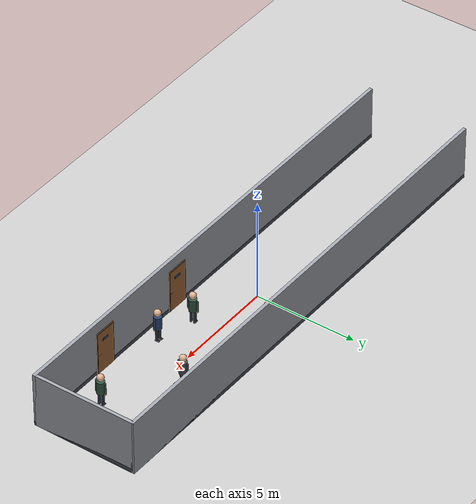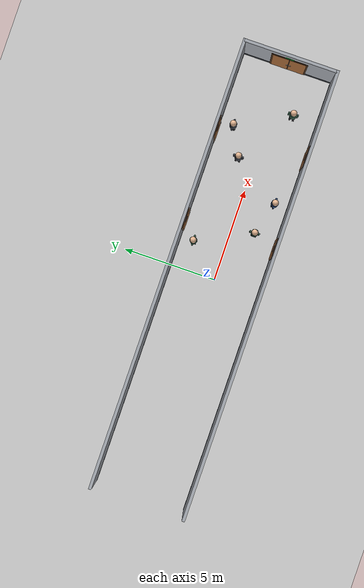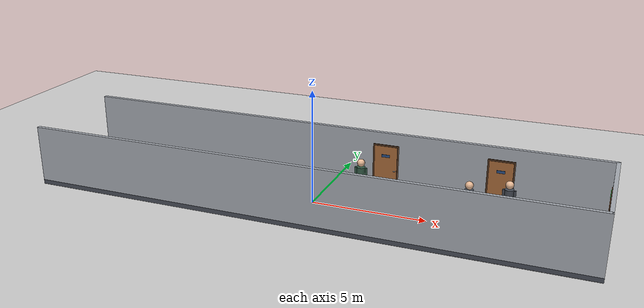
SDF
<sdf version="1.6">
 <world name="default">
  <include><uri>model://ground_plane</uri></include>
  <include><uri>model://sun</uri></include>
  <model name="duvar_kuzey">
   <static>true</static>
   <pose>0 2.5 1.35 0 0 0</pose>
   <link name="link">
    <collision name="col"><geometry><box><size>24.16 0.16 2.7</size></box></geometry></collision>
    <visual name="duvar">
     <geometry><box><size>24.16 0.16 2.7</size></box></geometry>
     <material><ambient>0.54 0.56 0.59 1</ambient><diffuse>0.64 0.66 0.69 1</diffuse></material>
    </visual>
    <visual name="supurgelik">
     <pose>0 -0.005 -1.25 0 0 0</pose>
     <geometry><box><size>24.16 0.17 0.2</size></box></geometry>
     <material><ambient>0.22 0.24 0.27 1</ambient><diffuse>0.28 0.30 0.34 1</diffuse></material>
    </visual>
   </link>
  </model>
  <model name="duvar_guney">
   <static>true</static>
   <pose>0 -2.5 1.35 0 0 0</pose>
   <link name="link">
    <collision name="col"><geometry><box><size>24.16 0.16 2.7</size></box></geometry></collision>
    <visual name="duvar">
     <geometry><box><size>24.16 0.16 2.7</size></box></geometry>
     <material><ambient>0.54 0.56 0.59 1</ambient><diffuse>0.64 0.66 0.69 1</diffuse></material>
    </visual>
    <visual name="supurgelik">
     <pose>0 0.005 -1.25 0 0 0</pose>
     <geometry><box><size>24.16 0.17 0.2</size></box></geometry>
     <material><ambient>0.22 0.24 0.27 1</ambient><diffuse>0.28 0.30 0.34 1</diffuse></material>
    </visual>
   </link>
  </model>
  <model name="duvar_dogu">
   <static>true</static>
   <pose>12.0 0 1.35 0 0 0</pose>
   <link name="link">
    <collision name="col"><geometry><box><size>0.16 5.0 2.7</size></box></geometry></collision>
    <visual name="duvar">
     <geometry><box><size>0.16 5.0 2.7</size></box></geometry>
     <material><ambient>0.54 0.56 0.59 1</ambient><diffuse>0.64 0.66 0.69 1</diffuse></material>
    </visual>
    <visual name="supurgelik">
     <pose>-0.005 0 -1.25 0 0 0</pose>
     <geometry><box><size>0.17 5.0 0.2</size></box></geometry>
     <material><ambient>0.22 0.24 0.27 1</ambient><diffuse>0.28 0.30 0.34 1</diffuse></material>
    </visual>
   </link>
  </model>
  <model name="kapi_kuzey_3">
   <static>true</static>
   <pose>2.5 2.41 0 0 0 0</pose>
   <link name="link">
    <visual name="kasa">
     <pose>0 0 1.08 0 0 0</pose>
     <geometry><box><size>1.16 0.04 2.16</size></box></geometry>
     <material><ambient>0.22 0.14 0.08 1</ambient><diffuse>0.30 0.19 0.11 1</diffuse></material>
    </visual>
    <visual name="kanat">
     <pose>0 -0.008 1.05 0 0 0</pose>
     <geometry><box><size>1.02 0.045 2.08</size></box></geometry>
     <material><ambient>0.52 0.32 0.16 1</ambient><diffuse>0.65 0.41 0.22 1</diffuse></material>
    </visual>
    <visual name="kol">
     <pose>0.40 -0.04 0.98 0 0 0</pose>
     <geometry><box><size>0.12 0.03 0.03</size></box></geometry>
     <material><ambient>0.75 0.75 0.78 1</ambient><diffuse>0.88 0.88 0.90 1</diffuse></material>
    </visual>
    <visual name="tabela">
     <pose>0 -0.035 1.65 0 0 0</pose>
     <geometry><box><size>0.36 0.015 0.12</size></box></geometry>
     <material><ambient>0.12 0.22 0.38 1</ambient><diffuse>0.16 0.30 0.50 1</diffuse></material>
    </visual>
   </link>
  </model>
  <model name="kapi_kuzey_4">
   <static>true</static>
   <pose>7.5 2.41 0 0 0 0</pose>
   <link name="link">
    <visual name="kasa">
     <pose>0 0 1.08 0 0 0</pose>
     <geometry><box><size>1.16 0.04 2.16</size></box></geometry>
     <material><ambient>0.22 0.14 0.08 1</ambient><diffuse>0.30 0.19 0.11 1</diffuse></material>
    </visual>
    <visual name="kanat">
     <pose>0 -0.008 1.05 0 0 0</pose>
     <geometry><box><size>1.02 0.045 2.08</size></box></geometry>
     <material><ambient>0.52 0.32 0.16 1</ambient><diffuse>0.65 0.41 0.22 1</diffuse></material>
    </visual>
    <visual name="kol">
     <pose>0.40 -0.04 0.98 0 0 0</pose>
     <geometry><box><size>0.12 0.03 0.03</size></box></geometry>
     <material><ambient>0.75 0.75 0.78 1</ambient><diffuse>0.88 0.88 0.90 1</diffuse></material>
    </visual>
    <visual name="tabela">
     <pose>0 -0.035 1.65 0 0 0</pose>
     <geometry><box><size>0.36 0.015 0.12</size></box></geometry>
     <material><ambient>0.12 0.22 0.38 1</ambient><diffuse>0.16 0.30 0.50 1</diffuse></material>
    </visual>
   </link>
  </model>
  <model name="kapi_guney_3">
   <static>true</static>
   <pose>2.5 -2.41 0 0 0 0</pose>
   <link name="link">
    <visual name="kasa">
     <pose>0 0 1.08 0 0 0</pose>
     <geometry><box><size>1.16 0.04 2.16</size></box></geometry>
     <material><ambient>0.22 0.14 0.08 1</ambient><diffuse>0.30 0.19 0.11 1</diffuse></material>
    </visual>
    <visual name="kanat">
     <pose>0 0.008 1.05 0 0 0</pose>
     <geometry><box><size>1.02 0.045 2.08</size></box></geometry>
     <material><ambient>0.52 0.32 0.16 1</ambient><diffuse>0.65 0.41 0.22 1</diffuse></material>
    </visual>
    <visual name="kol">
     <pose>0.40 0.04 0.98 0 0 0</pose>
     <geometry><box><size>0.12 0.03 0.03</size></box></geometry>
     <material><ambient>0.75 0.75 0.78 1</ambient><diffuse>0.88 0.88 0.90 1</diffuse></material>
    </visual>
    <visual name="tabela">
     <pose>0 0.035 1.65 0 0 0</pose>
     <geometry><box><size>0.36 0.015 0.12</size></box></geometry>
     <material><ambient>0.12 0.22 0.38 1</ambient><diffuse>0.16 0.30 0.50 1</diffuse></material>
    </visual>
   </link>
  </model>
  <model name="kapi_guney_4">
   <static>true</static>
   <pose>7.5 -2.41 0 0 0 0</pose>
   <link name="link">
    <visual name="kasa">
     <pose>0 0 1.08 0 0 0</pose>
     <geometry><box><size>1.16 0.04 2.16</size></box></geometry>
     <material><ambient>0.22 0.14 0.08 1</ambient><diffuse>0.30 0.19 0.11 1</diffuse></material>
    </visual>
    <visual name="kanat">
     <pose>0 0.008 1.05 0 0 0</pose>
     <geometry><box><size>1.02 0.045 2.08</size></box></geometry>
     <material><ambient>0.52 0.32 0.16 1</ambient><diffuse>0.65 0.41 0.22 1</diffuse></material>
    </visual>
    <visual name="kol">
     <pose>0.40 0.04 0.98 0 0 0</pose>
     <geometry><box><size>0.12 0.03 0.03</size></box></geometry>
     <material><ambient>0.75 0.75 0.78 1</ambient><diffuse>0.88 0.88 0.90 1</diffuse></material>
    </visual>
    <visual name="tabela">
     <pose>0 0.035 1.65 0 0 0</pose>
     <geometry><box><size>0.36 0.015 0.12</size></box></geometry>
     <material><ambient>0.12 0.22 0.38 1</ambient><diffuse>0.16 0.30 0.50 1</diffuse></material>
    </visual>
   </link>
  </model>
  <model name="kapi_dogu_cikis">
   <static>true</static>
   <pose>11.91 0 0 0 0 0</pose>
   <link name="link">
    <visual name="kasa">
     <pose>0 0 1.12 0 0 0</pose>
     <geometry><box><size>0.04 1.96 2.24</size></box></geometry>
     <material><ambient>0.22 0.14 0.08 1</ambient><diffuse>0.30 0.19 0.11 1</diffuse></material>
    </visual>
    <visual name="kanat_sol">
     <pose>-0.008 0.46 1.09 0 0 0</pose>
     <geometry><box><size>0.045 0.88 2.16</size></box></geometry>
     <material><ambient>0.52 0.32 0.16 1</ambient><diffuse>0.65 0.41 0.22 1</diffuse></material>
    </visual>
    <visual name="kanat_sag">
     <pose>-0.008 -0.46 1.09 0 0 0</pose>
     <geometry><box><size>0.045 0.88 2.16</size></box></geometry>
     <material><ambient>0.52 0.32 0.16 1</ambient><diffuse>0.65 0.41 0.22 1</diffuse></material>
    </visual>
    <visual name="kol_sol">
     <pose>-0.04 0.08 0.98 0 0 0</pose>
     <geometry><box><size>0.03 0.12 0.03</size></box></geometry>
     <material><ambient>0.75 0.75 0.78 1</ambient><diffuse>0.88 0.88 0.90 1</diffuse></material>
    </visual>
    <visual name="kol_sag">
     <pose>-0.04 -0.08 0.98 0 0 0</pose>
     <geometry><box><size>0.03 0.12 0.03</size></box></geometry>
     <material><ambient>0.75 0.75 0.78 1</ambient><diffuse>0.88 0.88 0.90 1</diffuse></material>
    </visual>
    <visual name="exit_tabela">
     <pose>-0.03 0 2.36 0 0 0</pose>
     <geometry><box><size>0.02 0.48 0.16</size></box></geometry>
     <material><ambient>0.10 0.55 0.20 1</ambient><diffuse>0.15 0.75 0.28 1</diffuse></material>
    </visual>
   </link>
  </model>
  <model name="insan_4">
   <static>false</static>
   <pose>1.6 1.7 0 0 0 -1.57</pose>
   <link name="base_link">
    <inertial>
     <pose>0 0 0.80 0 0 0</pose>
     <mass>50.0</mass>
     <inertia><ixx>100.0</ixx><ixy>0</ixy><ixz>0</ixz><iyy>100.0</iyy><iyz>0</iyz><izz>10.0</izz></inertia>
    </inertial>
    <collision name="tek_collision">
     <pose>0 0 0.8222 0 0 0</pose>
     <geometry><cylinder><radius>0.23</radius><length>1.5944</length></cylinder></geometry>
     <surface><friction><ode><mu>0.0</mu><mu2>0.0</mu2></ode></friction></surface>
    </collision>
    <visual name="govde_vis">
     <pose>0 0 0.9570 0 0 0</pose>
     <geometry><cylinder><radius>0.19</radius><length>0.6048</length></cylinder></geometry>
     <material><ambient>0.16 0.28 0.22 1</ambient><diffuse>0.21 0.36 0.28 1</diffuse></material>
    </visual>
    <visual name="kafa_vis">
     <pose>0 0 1.4494 0 0 0</pose>
     <geometry><sphere><radius>0.17</radius></sphere></geometry>
     <material><ambient>0.85 0.68 0.55 1</ambient><diffuse>0.90 0.72 0.58 1</diffuse></material>
    </visual>
    <visual name="bacak_sol_vis">
     <pose>0 0.095 0.3648 0 0 0</pose>
     <geometry><cylinder><radius>0.068</radius><length>0.5796</length></cylinder></geometry>
     <material><ambient>0.14 0.16 0.20 1</ambient><diffuse>0.18 0.20 0.25 1</diffuse></material>
    </visual>
    <visual name="bacak_sag_vis">
     <pose>0 -0.095 0.3648 0 0 0</pose>
     <geometry><cylinder><radius>0.068</radius><length>0.5796</length></cylinder></geometry>
     <material><ambient>0.14 0.16 0.20 1</ambient><diffuse>0.18 0.20 0.25 1</diffuse></material>
    </visual>
    <visual name="ayak_sol_vis">
     <pose>0.04 0.095 0.0500 0 0 0</pose>
     <geometry><box><size>0.21 0.095 0.05</size></box></geometry>
     <material><ambient>0.10 0.10 0.11 1</ambient><diffuse>0.15 0.15 0.17 1</diffuse></material>
    </visual>
    <visual name="ayak_sag_vis">
     <pose>0.04 -0.095 0.0500 0 0 0</pose>
     <geometry><box><size>0.21 0.095 0.05</size></box></geometry>
     <material><ambient>0.10 0.10 0.11 1</ambient><diffuse>0.15 0.15 0.17 1</diffuse></material>
    </visual>
    <visual name="kol_sol_vis">
     <pose>0 0.235 0.9724 0 0 0</pose>
     <geometry><cylinder><radius>0.048</radius><length>0.5141</length></cylinder></geometry>
     <material><ambient>0.16 0.28 0.22 1</ambient><diffuse>0.21 0.36 0.28 1</diffuse></material>
    </visual>
    <visual name="kol_sag_vis">
     <pose>0 -0.235 0.9724 0 0 0</pose>
     <geometry><cylinder><radius>0.048</radius><length>0.5141</length></cylinder></geometry>
     <material><ambient>0.16 0.28 0.22 1</ambient><diffuse>0.21 0.36 0.28 1</diffuse></material>
    </visual>
    <visual name="el_sol_vis">
     <pose>0 0.235 0.6753 0 0 0</pose>
     <geometry><sphere><radius>0.048</radius></sphere></geometry>
     <material><ambient>0.85 0.68 0.55 1</ambient><diffuse>0.90 0.72 0.58 1</diffuse></material>
    </visual>
    <visual name="el_sag_vis">
     <pose>0 -0.235 0.6753 0 0 0</pose>
     <geometry><sphere><radius>0.048</radius></sphere></geometry>
     <material><ambient>0.85 0.68 0.55 1</ambient><diffuse>0.90 0.72 0.58 1</diffuse></material>
    </visual>
   </link>
   <plugin name="insan_4_planar_move" filename="libgazebo_ros_planar_move.so">
    <ros>
     <namespace>/insan_4</namespace>
     <remapping>cmd_vel:=cmd_vel</remapping>
     <remapping>odom:=odom</remapping>
    </ros>
    <update_rate>30</update_rate>
    <publish_rate>10</publish_rate>
    <publish_odom>false</publish_odom>
    <publish_odom_tf>false</publish_odom_tf>
    <odometry_frame>insan_4_odom</odometry_frame>
    <robot_base_frame>base_link</robot_base_frame>
   </plugin>
  </model>
  <model name="insan_5">
   <static>false</static>
   <pose>4.8 -1.7 0 0 0 1.57</pose>
   <link name="base_link">
    <inertial>
     <pose>0 0 0.80 0 0 0</pose>
     <mass>50.0</mass>
     <inertia><ixx>100.0</ixx><ixy>0</ixy><ixz>0</ixz><iyy>100.0</iyy><iyz>0</iyz><izz>10.0</izz></inertia>
    </inertial>
    <collision name="tek_collision">
     <pose>0 0 0.8410 0 0 0</pose>
     <geometry><cylinder><radius>0.23</radius><length>1.6320</length></cylinder></geometry>
     <surface><friction><ode><mu>0.0</mu><mu2>0.0</mu2></ode></friction></surface>
    </collision>
    <visual name="govde_vis">
     <pose>0 0 0.9850 0 0 0</pose>
     <geometry><cylinder><radius>0.19</radius><length>0.6240</length></cylinder></geometry>
     <material><ambient>0.14 0.22 0.36 1</ambient><diffuse>0.18 0.28 0.46 1</diffuse></material>
    </visual>
    <visual name="kafa_vis">
     <pose>0 0 1.4870 0 0 0</pose>
     <geometry><sphere><radius>0.17</radius></sphere></geometry>
     <material><ambient>0.85 0.68 0.55 1</ambient><diffuse>0.90 0.72 0.58 1</diffuse></material>
    </visual>
    <visual name="bacak_sol_vis">
     <pose>0 0.095 0.3740 0 0 0</pose>
     <geometry><cylinder><radius>0.068</radius><length>0.5980</length></cylinder></geometry>
     <material><ambient>0.14 0.16 0.20 1</ambient><diffuse>0.18 0.20 0.25 1</diffuse></material>
    </visual>
    <visual name="bacak_sag_vis">
     <pose>0 -0.095 0.3740 0 0 0</pose>
     <geometry><cylinder><radius>0.068</radius><length>0.5980</length></cylinder></geometry>
     <material><ambient>0.14 0.16 0.20 1</ambient><diffuse>0.18 0.20 0.25 1</diffuse></material>
    </visual>
    <visual name="ayak_sol_vis">
     <pose>0.04 0.095 0.0500 0 0 0</pose>
     <geometry><box><size>0.21 0.095 0.05</size></box></geometry>
     <material><ambient>0.10 0.10 0.11 1</ambient><diffuse>0.15 0.15 0.17 1</diffuse></material>
    </visual>
    <visual name="ayak_sag_vis">
     <pose>0.04 -0.095 0.0500 0 0 0</pose>
     <geometry><box><size>0.21 0.095 0.05</size></box></geometry>
     <material><ambient>0.10 0.10 0.11 1</ambient><diffuse>0.15 0.15 0.17 1</diffuse></material>
    </visual>
    <visual name="kol_sol_vis">
     <pose>0 0.235 1.0018 0 0 0</pose>
     <geometry><cylinder><radius>0.048</radius><length>0.5304</length></cylinder></geometry>
     <material><ambient>0.14 0.22 0.36 1</ambient><diffuse>0.18 0.28 0.46 1</diffuse></material>
    </visual>
    <visual name="kol_sag_vis">
     <pose>0 -0.235 1.0018 0 0 0</pose>
     <geometry><cylinder><radius>0.048</radius><length>0.5304</length></cylinder></geometry>
     <material><ambient>0.14 0.22 0.36 1</ambient><diffuse>0.18 0.28 0.46 1</diffuse></material>
    </visual>
    <visual name="el_sol_vis">
     <pose>0 0.235 0.6966 0 0 0</pose>
     <geometry><sphere><radius>0.048</radius></sphere></geometry>
     <material><ambient>0.85 0.68 0.55 1</ambient><diffuse>0.90 0.72 0.58 1</diffuse></material>
    </visual>
    <visual name="el_sag_vis">
     <pose>0 -0.235 0.6966 0 0 0</pose>
     <geometry><sphere><radius>0.048</radius></sphere></geometry>
     <material><ambient>0.85 0.68 0.55 1</ambient><diffuse>0.90 0.72 0.58 1</diffuse></material>
    </visual>
   </link>
   <plugin name="insan_5_planar_move" filename="libgazebo_ros_planar_move.so">
    <ros>
     <namespace>/insan_5</namespace>
     <remapping>cmd_vel:=cmd_vel</remapping>
     <remapping>odom:=odom</remapping>
    </ros>
    <update_rate>30</update_rate>
    <publish_rate>10</publish_rate>
    <publish_odom>false</publish_odom>
    <publish_odom_tf>false</publish_odom_tf>
    <odometry_frame>insan_5_odom</odometry_frame>
    <robot_base_frame>base_link</robot_base_frame>
   </plugin>
  </model>
  <model name="insan_6">
   <static>false</static>
   <pose>8.0 1.7 0 0 0 -1.57</pose>
   <link name="base_link">
    <inertial>
     <pose>0 0 0.80 0 0 0</pose>
     <mass>50.0</mass>
     <inertia><ixx>100.0</ixx><ixy>0</ixy><ixz>0</ixz><iyy>100.0</iyy><iyz>0</iyz><izz>10.0</izz></inertia>
    </inertial>
    <collision name="tek_collision">
     <pose>0 0 0.8034 0 0 0</pose>
     <geometry><cylinder><radius>0.23</radius><length>1.5568</length></cylinder></geometry>
     <surface><friction><ode><mu>0.0</mu><mu2>0.0</mu2></ode></friction></surface>
    </collision>
    <visual name="govde_vis">
     <pose>0 0 0.9290 0 0 0</pose>
     <geometry><cylinder><radius>0.19</radius><length>0.5856</length></cylinder></geometry>
     <material><ambient>0.22 0.24 0.27 1</ambient><diffuse>0.28 0.30 0.34 1</diffuse></material>
    </visual>
    <visual name="kafa_vis">
     <pose>0 0 1.4118 0 0 0</pose>
     <geometry><sphere><radius>0.17</radius></sphere></geometry>
     <material><ambient>0.85 0.68 0.55 1</ambient><diffuse>0.90 0.72 0.58 1</diffuse></material>
    </visual>
    <visual name="bacak_sol_vis">
     <pose>0 0.095 0.3556 0 0 0</pose>
     <geometry><cylinder><radius>0.068</radius><length>0.5612</length></cylinder></geometry>
     <material><ambient>0.14 0.16 0.20 1</ambient><diffuse>0.18 0.20 0.25 1</diffuse></material>
    </visual>
    <visual name="bacak_sag_vis">
     <pose>0 -0.095 0.3556 0 0 0</pose>
     <geometry><cylinder><radius>0.068</radius><length>0.5612</length></cylinder></geometry>
     <material><ambient>0.14 0.16 0.20 1</ambient><diffuse>0.18 0.20 0.25 1</diffuse></material>
    </visual>
    <visual name="ayak_sol_vis">
     <pose>0.04 0.095 0.0500 0 0 0</pose>
     <geometry><box><size>0.21 0.095 0.05</size></box></geometry>
     <material><ambient>0.10 0.10 0.11 1</ambient><diffuse>0.15 0.15 0.17 1</diffuse></material>
    </visual>
    <visual name="ayak_sag_vis">
     <pose>0.04 -0.095 0.0500 0 0 0</pose>
     <geometry><box><size>0.21 0.095 0.05</size></box></geometry>
     <material><ambient>0.10 0.10 0.11 1</ambient><diffuse>0.15 0.15 0.17 1</diffuse></material>
    </visual>
    <visual name="kol_sol_vis">
     <pose>0 0.235 0.9429 0 0 0</pose>
     <geometry><cylinder><radius>0.048</radius><length>0.4978</length></cylinder></geometry>
     <material><ambient>0.22 0.24 0.27 1</ambient><diffuse>0.28 0.30 0.34 1</diffuse></material>
    </visual>
    <visual name="kol_sag_vis">
     <pose>0 -0.235 0.9429 0 0 0</pose>
     <geometry><cylinder><radius>0.048</radius><length>0.4978</length></cylinder></geometry>
     <material><ambient>0.22 0.24 0.27 1</ambient><diffuse>0.28 0.30 0.34 1</diffuse></material>
    </visual>
    <visual name="el_sol_vis">
     <pose>0 0.235 0.6540 0 0 0</pose>
     <geometry><sphere><radius>0.048</radius></sphere></geometry>
     <material><ambient>0.85 0.68 0.55 1</ambient><diffuse>0.90 0.72 0.58 1</diffuse></material>
    </visual>
    <visual name="el_sag_vis">
     <pose>0 -0.235 0.6540 0 0 0</pose>
     <geometry><sphere><radius>0.048</radius></sphere></geometry>
     <material><ambient>0.85 0.68 0.55 1</ambient><diffuse>0.90 0.72 0.58 1</diffuse></material>
    </visual>
   </link>
   <plugin name="insan_6_planar_move" filename="libgazebo_ros_planar_move.so">
    <ros>
     <namespace>/insan_6</namespace>
     <remapping>cmd_vel:=cmd_vel</remapping>
     <remapping>odom:=odom</remapping>
    </ros>
    <update_rate>30</update_rate>
    <publish_rate>10</publish_rate>
    <publish_odom>false</publish_odom>
    <publish_odom_tf>false</publish_odom_tf>
    <odometry_frame>insan_6_odom</odometry_frame>
    <robot_base_frame>base_link</robot_base_frame>
   </plugin>
  </model>
  <model name="insan_8">
   <static>false</static>
   <pose>9.5 -1.1 0 0 0 3.14</pose>
   <link name="base_link">
    <inertial>
     <pose>0 0 0.80 0 0 0</pose>
     <mass>50.0</mass>
     <inertia><ixx>100.0</ixx><ixy>0</ixy><ixz>0</ixz><iyy>100.0</iyy><iyz>0</iyz><izz>10.0</izz></inertia>
    </inertial>
    <collision name="tek_collision">
     <pose>0 0 0.8457 0 0 0</pose>
     <geometry><cylinder><radius>0.23</radius><length>1.6414</length></cylinder></geometry>
     <surface><friction><ode><mu>0.0</mu><mu2>0.0</mu2></ode></friction></surface>
    </collision>
    <visual name="govde_vis">
     <pose>0 0 0.9920 0 0 0</pose>
     <geometry><cylinder><radius>0.19</radius><length>0.6288</length></cylinder></geometry>
     <material><ambient>0.16 0.28 0.22 1</ambient><diffuse>0.21 0.36 0.28 1</diffuse></material>
    </visual>
    <visual name="kafa_vis">
     <pose>0 0 1.4964 0 0 0</pose>
     <geometry><sphere><radius>0.17</radius></sphere></geometry>
     <material><ambient>0.85 0.68 0.55 1</ambient><diffuse>0.90 0.72 0.58 1</diffuse></material>
    </visual>
    <visual name="bacak_sol_vis">
     <pose>0 0.095 0.3763 0 0 0</pose>
     <geometry><cylinder><radius>0.068</radius><length>0.6026</length></cylinder></geometry>
     <material><ambient>0.14 0.16 0.20 1</ambient><diffuse>0.18 0.20 0.25 1</diffuse></material>
    </visual>
    <visual name="bacak_sag_vis">
     <pose>0 -0.095 0.3763 0 0 0</pose>
     <geometry><cylinder><radius>0.068</radius><length>0.6026</length></cylinder></geometry>
     <material><ambient>0.14 0.16 0.20 1</ambient><diffuse>0.18 0.20 0.25 1</diffuse></material>
    </visual>
    <visual name="ayak_sol_vis">
     <pose>0.04 0.095 0.0500 0 0 0</pose>
     <geometry><box><size>0.21 0.095 0.05</size></box></geometry>
     <material><ambient>0.10 0.10 0.11 1</ambient><diffuse>0.15 0.15 0.17 1</diffuse></material>
    </visual>
    <visual name="ayak_sag_vis">
     <pose>0.04 -0.095 0.0500 0 0 0</pose>
     <geometry><box><size>0.21 0.095 0.05</size></box></geometry>
     <material><ambient>0.10 0.10 0.11 1</ambient><diffuse>0.15 0.15 0.17 1</diffuse></material>
    </visual>
    <visual name="kol_sol_vis">
     <pose>0 0.235 1.0092 0 0 0</pose>
     <geometry><cylinder><radius>0.048</radius><length>0.5345</length></cylinder></geometry>
     <material><ambient>0.16 0.28 0.22 1</ambient><diffuse>0.21 0.36 0.28 1</diffuse></material>
    </visual>
    <visual name="kol_sag_vis">
     <pose>0 -0.235 1.0092 0 0 0</pose>
     <geometry><cylinder><radius>0.048</radius><length>0.5345</length></cylinder></geometry>
     <material><ambient>0.16 0.28 0.22 1</ambient><diffuse>0.21 0.36 0.28 1</diffuse></material>
    </visual>
    <visual name="el_sol_vis">
     <pose>0 0.235 0.7019 0 0 0</pose>
     <geometry><sphere><radius>0.048</radius></sphere></geometry>
     <material><ambient>0.85 0.68 0.55 1</ambient><diffuse>0.90 0.72 0.58 1</diffuse></material>
    </visual>
    <visual name="el_sag_vis">
     <pose>0 -0.235 0.7019 0 0 0</pose>
     <geometry><sphere><radius>0.048</radius></sphere></geometry>
     <material><ambient>0.85 0.68 0.55 1</ambient><diffuse>0.90 0.72 0.58 1</diffuse></material>
    </visual>
   </link>
   <plugin name="insan_8_planar_move" filename="libgazebo_ros_planar_move.so">
    <ros>
     <namespace>/insan_8</namespace>
     <remapping>cmd_vel:=cmd_vel</remapping>
     <remapping>odom:=odom</remapping>
    </ros>
    <update_rate>30</update_rate>
    <publish_rate>10</publish_rate>
    <publish_odom>false</publish_odom>
    <publish_odom_tf>false</publish_odom_tf>
    <odometry_frame>insan_8_odom</odometry_frame>
    <robot_base_frame>base_link</robot_base_frame>
   </plugin>
  </model>
  <model name="insan_10">
   <static>false</static>
   <pose>6.5 0.9 0 0 0 3.14</pose>
   <link name="base_link">
    <inertial>
     <pose>0 0 0.80 0 0 0</pose>
     <mass>50.0</mass>
     <inertia><ixx>100.0</ixx><ixy>0</ixy><ixz>0</ixz><iyy>100.0</iyy><iyz>0</iyz><izz>10.0</izz></inertia>
    </inertial>
    <collision name="tek_collision">
     <pose>0 0 0.8363 0 0 0</pose>
     <geometry><cylinder><radius>0.23</radius><length>1.6226</length></cylinder></geometry>
     <surface><friction><ode><mu>0.0</mu><mu2>0.0</mu2></ode></friction></surface>
    </collision>
    <visual name="govde_vis">
     <pose>0 0 0.9780 0 0 0</pose>
     <geometry><cylinder><radius>0.19</radius><length>0.6192</length></cylinder></geometry>
     <material><ambient>0.22 0.24 0.27 1</ambient><diffuse>0.28 0.30 0.34 1</diffuse></material>
    </visual>
    <visual name="kafa_vis">
     <pose>0 0 1.4776 0 0 0</pose>
     <geometry><sphere><radius>0.17</radius></sphere></geometry>
     <material><ambient>0.85 0.68 0.55 1</ambient><diffuse>0.90 0.72 0.58 1</diffuse></material>
    </visual>
    <visual name="bacak_sol_vis">
     <pose>0 0.095 0.3717 0 0 0</pose>
     <geometry><cylinder><radius>0.068</radius><length>0.5934</length></cylinder></geometry>
     <material><ambient>0.14 0.16 0.20 1</ambient><diffuse>0.18 0.20 0.25 1</diffuse></material>
    </visual>
    <visual name="bacak_sag_vis">
     <pose>0 -0.095 0.3717 0 0 0</pose>
     <geometry><cylinder><radius>0.068</radius><length>0.5934</length></cylinder></geometry>
     <material><ambient>0.14 0.16 0.20 1</ambient><diffuse>0.18 0.20 0.25 1</diffuse></material>
    </visual>
    <visual name="ayak_sol_vis">
     <pose>0.04 0.095 0.0500 0 0 0</pose>
     <geometry><box><size>0.21 0.095 0.05</size></box></geometry>
     <material><ambient>0.10 0.10 0.11 1</ambient><diffuse>0.15 0.15 0.17 1</diffuse></material>
    </visual>
    <visual name="ayak_sag_vis">
     <pose>0.04 -0.095 0.0500 0 0 0</pose>
     <geometry><box><size>0.21 0.095 0.05</size></box></geometry>
     <material><ambient>0.10 0.10 0.11 1</ambient><diffuse>0.15 0.15 0.17 1</diffuse></material>
    </visual>
    <visual name="kol_sol_vis">
     <pose>0 0.235 0.9944 0 0 0</pose>
     <geometry><cylinder><radius>0.048</radius><length>0.5263</length></cylinder></geometry>
     <material><ambient>0.22 0.24 0.27 1</ambient><diffuse>0.28 0.30 0.34 1</diffuse></material>
    </visual>
    <visual name="kol_sag_vis">
     <pose>0 -0.235 0.9944 0 0 0</pose>
     <geometry><cylinder><radius>0.048</radius><length>0.5263</length></cylinder></geometry>
     <material><ambient>0.22 0.24 0.27 1</ambient><diffuse>0.28 0.30 0.34 1</diffuse></material>
    </visual>
    <visual name="el_sol_vis">
     <pose>0 0.235 0.6913 0 0 0</pose>
     <geometry><sphere><radius>0.048</radius></sphere></geometry>
     <material><ambient>0.85 0.68 0.55 1</ambient><diffuse>0.90 0.72 0.58 1</diffuse></material>
    </visual>
    <visual name="el_sag_vis">
     <pose>0 -0.235 0.6913 0 0 0</pose>
     <geometry><sphere><radius>0.048</radius></sphere></geometry>
     <material><ambient>0.85 0.68 0.55 1</ambient><diffuse>0.90 0.72 0.58 1</diffuse></material>
    </visual>
   </link>
   <plugin name="insan_10_planar_move" filename="libgazebo_ros_planar_move.so">
    <ros>
     <namespace>/insan_10</namespace>
     <remapping>cmd_vel:=cmd_vel</remapping>
     <remapping>odom:=odom</remapping>
    </ros>
    <update_rate>30</update_rate>
    <publish_rate>10</publish_rate>
    <publish_odom>false</publish_odom>
    <publish_odom_tf>false</publish_odom_tf>
    <odometry_frame>insan_10_odom</odometry_frame>
    <robot_base_frame>base_link</robot_base_frame>
   </plugin>
  </model>
  <model name="insan_12">
   <static>false</static>
   <pose>3.0 -1.2 0 0 0 3.14</pose>
   <link name="base_link">
    <inertial>
     <pose>0 0 0.80 0 0 0</pose>
     <mass>50.0</mass>
     <inertia><ixx>100.0</ixx><ixy>0</ixy><ixz>0</ixz><iyy>100.0</iyy><iyz>0</iyz><izz>10.0</izz></inertia>
    </inertial>
    <collision name="tek_collision">
     <pose>0 0 0.8316 0 0 0</pose>
     <geometry><cylinder><radius>0.23</radius><length>1.6132</length></cylinder></geometry>
     <surface><friction><ode><mu>0.0</mu><mu2>0.0</mu2></ode></friction></surface>
    </collision>
    <visual name="govde_vis">
     <pose>0 0 0.9710 0 0 0</pose>
     <geometry><cylinder><radius>0.19</radius><length>0.6144</length></cylinder></geometry>
     <material><ambient>0.16 0.28 0.22 1</ambient><diffuse>0.21 0.36 0.28 1</diffuse></material>
    </visual>
    <visual name="kafa_vis">
     <pose>0 0 1.4682 0 0 0</pose>
     <geometry><sphere><radius>0.17</radius></sphere></geometry>
     <material><ambient>0.85 0.68 0.55 1</ambient><diffuse>0.90 0.72 0.58 1</diffuse></material>
    </visual>
    <visual name="bacak_sol_vis">
     <pose>0 0.095 0.3694 0 0 0</pose>
     <geometry><cylinder><radius>0.068</radius><length>0.5888</length></cylinder></geometry>
     <material><ambient>0.14 0.16 0.20 1</ambient><diffuse>0.18 0.20 0.25 1</diffuse></material>
    </visual>
    <visual name="bacak_sag_vis">
     <pose>0 -0.095 0.3694 0 0 0</pose>
     <geometry><cylinder><radius>0.068</radius><length>0.5888</length></cylinder></geometry>
     <material><ambient>0.14 0.16 0.20 1</ambient><diffuse>0.18 0.20 0.25 1</diffuse></material>
    </visual>
    <visual name="ayak_sol_vis">
     <pose>0.04 0.095 0.0500 0 0 0</pose>
     <geometry><box><size>0.21 0.095 0.05</size></box></geometry>
     <material><ambient>0.10 0.10 0.11 1</ambient><diffuse>0.15 0.15 0.17 1</diffuse></material>
    </visual>
    <visual name="ayak_sag_vis">
     <pose>0.04 -0.095 0.0500 0 0 0</pose>
     <geometry><box><size>0.21 0.095 0.05</size></box></geometry>
     <material><ambient>0.10 0.10 0.11 1</ambient><diffuse>0.15 0.15 0.17 1</diffuse></material>
    </visual>
    <visual name="kol_sol_vis">
     <pose>0 0.235 0.9871 0 0 0</pose>
     <geometry><cylinder><radius>0.048</radius><length>0.5222</length></cylinder></geometry>
     <material><ambient>0.16 0.28 0.22 1</ambient><diffuse>0.21 0.36 0.28 1</diffuse></material>
    </visual>
    <visual name="kol_sag_vis">
     <pose>0 -0.235 0.9871 0 0 0</pose>
     <geometry><cylinder><radius>0.048</radius><length>0.5222</length></cylinder></geometry>
     <material><ambient>0.16 0.28 0.22 1</ambient><diffuse>0.21 0.36 0.28 1</diffuse></material>
    </visual>
    <visual name="el_sol_vis">
     <pose>0 0.235 0.6860 0 0 0</pose>
     <geometry><sphere><radius>0.048</radius></sphere></geometry>
     <material><ambient>0.85 0.68 0.55 1</ambient><diffuse>0.90 0.72 0.58 1</diffuse></material>
    </visual>
    <visual name="el_sag_vis">
     <pose>0 -0.235 0.6860 0 0 0</pose>
     <geometry><sphere><radius>0.048</radius></sphere></geometry>
     <material><ambient>0.85 0.68 0.55 1</ambient><diffuse>0.90 0.72 0.58 1</diffuse></material>
    </visual>
   </link>
   <plugin name="insan_12_planar_move" filename="libgazebo_ros_planar_move.so">
    <ros>
     <namespace>/insan_12</namespace>
     <remapping>cmd_vel:=cmd_vel</remapping>
     <remapping>odom:=odom</remapping>
    </ros>
    <update_rate>30</update_rate>
    <publish_rate>10</publish_rate>
    <publish_odom>false</publish_odom>
    <publish_odom_tf>false</publish_odom_tf>
    <odometry_frame>insan_12_odom</odometry_frame>
    <robot_base_frame>base_link</robot_base_frame>
   </plugin>
  </model>
 </world>
</sdf>
